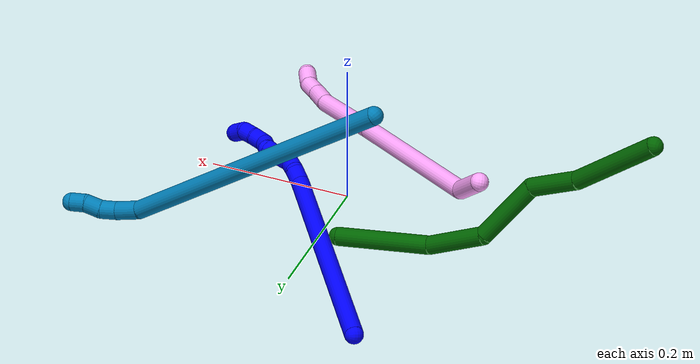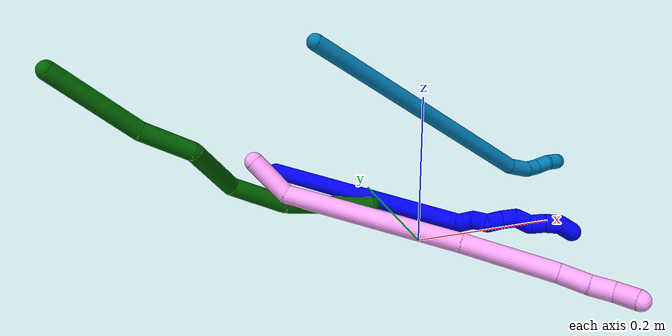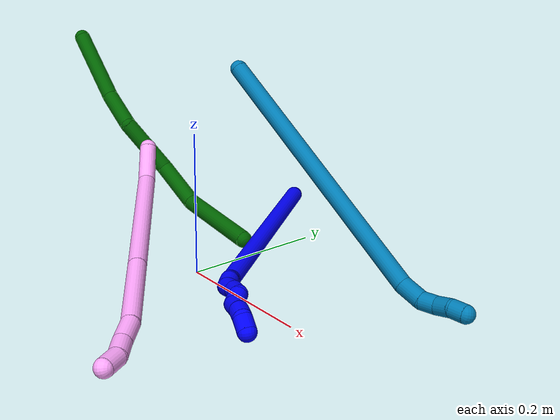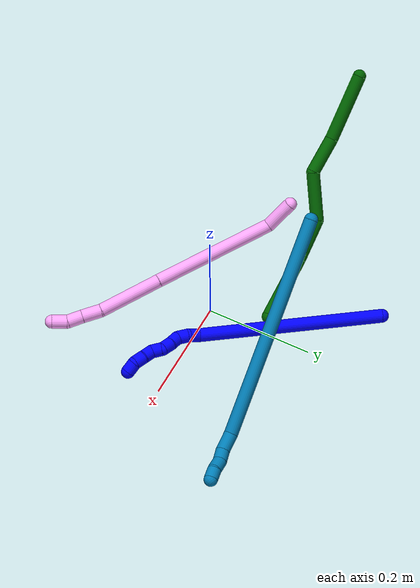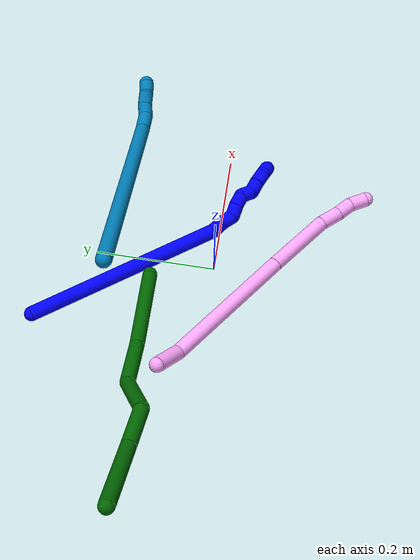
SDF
<sdf version="1.7">
 <world name="default">
  <model name="1">
   <static>0</static>
   <link name="1">
    <collision name="collision-cylinder-e_1_1_4">
     <pose>0.053994 -0.158262 0.025467 1.41125 0.324899 0.277464</pose>
     <geometry><cylinder><radius>0.0125</radius><length>0.338294</length></cylinder></geometry>
     <surface>
      <friction><ode><mu>1.16</mu><mu2>1.16</mu2><slip1>0</slip1><slip2>0</slip2></ode></friction>
      <contact><ode><kp>1e+06</kp><kd>1</kd><max_vel>0</max_vel><min_depth>0.001</min_depth></ode></contact>
     </surface>
    </collision>
    <visual name="visual-cylinder-e_1_1_4">
     <pose>0.053994 -0.158262 0.025467 1.41125 0.324899 0.277464</pose>
     <geometry><cylinder><radius>0.0125</radius><length>0.338294</length></cylinder></geometry>
     <material><ambient>0 0 1 1</ambient></material>
    </visual>
    <collision name="collision-cylinder-e_2_4_5">
     <pose>0.114764 -0.324826 0.049487 1.74329 0.677254 0.793318</pose>
     <geometry><cylinder><radius>0.0125</radius><length>0.021627</length></cylinder></geometry>
     <surface>
      <friction><ode><mu>1.16</mu><mu2>1.16</mu2><slip1>0</slip1><slip2>0</slip2></ode></friction>
      <contact><ode><kp>1e+06</kp><kd>1</kd><max_vel>0</max_vel><min_depth>0.001</min_depth></ode></contact>
     </surface>
    </collision>
    <visual name="visual-cylinder-e_2_4_5">
     <pose>0.114764 -0.324826 0.049487 1.74329 0.677254 0.793318</pose>
     <geometry><cylinder><radius>0.0125</radius><length>0.021627</length></cylinder></geometry>
     <material><ambient>0 0 1 1</ambient></material>
    </visual>
    <collision name="collision-cylinder-e_3_5_6">
     <pose>0.124332 -0.342738 0.048346 1.53905 0.282491 0.273775</pose>
     <geometry><cylinder><radius>0.0125</radius><length>0.020024</length></cylinder></geometry>
     <surface>
      <friction><ode><mu>1.16</mu><mu2>1.16</mu2><slip1>0</slip1><slip2>0</slip2></ode></friction>
      <contact><ode><kp>1e+06</kp><kd>1</kd><max_vel>0</max_vel><min_depth>0.001</min_depth></ode></contact>
     </surface>
    </collision>
    <visual name="visual-cylinder-e_3_5_6">
     <pose>0.124332 -0.342738 0.048346 1.53905 0.282491 0.273775</pose>
     <geometry><cylinder><radius>0.0125</radius><length>0.020024</length></cylinder></geometry>
     <material><ambient>0 0 1 1</ambient></material>
    </visual>
    <collision name="collision-cylinder-e_4_6_7">
     <pose>0.129993 -0.359819 0.042619 2.25004 0.290521 0.594157</pose>
     <geometry><cylinder><radius>0.0125</radius><length>0.020043</length></cylinder></geometry>
     <surface>
      <friction><ode><mu>1.16</mu><mu2>1.16</mu2><slip1>0</slip1><slip2>0</slip2></ode></friction>
      <contact><ode><kp>1e+06</kp><kd>1</kd><max_vel>0</max_vel><min_depth>0.001</min_depth></ode></contact>
     </surface>
    </collision>
    <visual name="visual-cylinder-e_4_6_7">
     <pose>0.129993 -0.359819 0.042619 2.25004 0.290521 0.594157</pose>
     <geometry><cylinder><radius>0.0125</radius><length>0.020043</length></cylinder></geometry>
     <material><ambient>0 0 1 1</ambient></material>
    </visual>
    <collision name="collision-cylinder-e_5_7_8">
     <pose>0.135843 -0.375632 0.031942 2.07893 0.302422 0.507367</pose>
     <geometry><cylinder><radius>0.0125</radius><length>0.020005</length></cylinder></geometry>
     <surface>
      <friction><ode><mu>1.16</mu><mu2>1.16</mu2><slip1>0</slip1><slip2>0</slip2></ode></friction>
      <contact><ode><kp>1e+06</kp><kd>1</kd><max_vel>0</max_vel><min_depth>0.001</min_depth></ode></contact>
     </surface>
    </collision>
    <visual name="visual-cylinder-e_5_7_8">
     <pose>0.135843 -0.375632 0.031942 2.07893 0.302422 0.507367</pose>
     <geometry><cylinder><radius>0.0125</radius><length>0.020005</length></cylinder></geometry>
     <material><ambient>0 0 1 1</ambient></material>
    </visual>
    <collision name="collision-cylinder-e_6_8_9">
     <pose>0.139943 -0.393727 0.029206 1.3774 0.112271 0.092448</pose>
     <geometry><cylinder><radius>0.0125</radius><length>0.020001</length></cylinder></geometry>
     <surface>
      <friction><ode><mu>1.16</mu><mu2>1.16</mu2><slip1>0</slip1><slip2>0</slip2></ode></friction>
      <contact><ode><kp>1e+06</kp><kd>1</kd><max_vel>0</max_vel><min_depth>0.001</min_depth></ode></contact>
     </surface>
    </collision>
    <visual name="visual-cylinder-e_6_8_9">
     <pose>0.139943 -0.393727 0.029206 1.3774 0.112271 0.092448</pose>
     <geometry><cylinder><radius>0.0125</radius><length>0.020001</length></cylinder></geometry>
     <material><ambient>0 0 1 1</ambient></material>
    </visual>
    <collision name="collision-cylinder-e_7_9_10">
     <pose>0.14367 -0.411992 0.02656 2.06218 0.26374 0.435818</pose>
     <geometry><cylinder><radius>0.0125</radius><length>0.020002</length></cylinder></geometry>
     <surface>
      <friction><ode><mu>1.16</mu><mu2>1.16</mu2><slip1>0</slip1><slip2>0</slip2></ode></friction>
      <contact><ode><kp>1e+06</kp><kd>1</kd><max_vel>0</max_vel><min_depth>0.001</min_depth></ode></contact>
     </surface>
    </collision>
    <visual name="visual-cylinder-e_7_9_10">
     <pose>0.14367 -0.411992 0.02656 2.06218 0.26374 0.435818</pose>
     <geometry><cylinder><radius>0.0125</radius><length>0.020002</length></cylinder></geometry>
     <material><ambient>0 0 1 1</ambient></material>
    </visual>
    <collision name="collision-cylinder-e_8_10_11">
     <pose>0.147796 -0.429738 0.018476 1.93569 0.152457 0.220967</pose>
     <geometry><cylinder><radius>0.0125</radius><length>0.020002</length></cylinder></geometry>
     <surface>
      <friction><ode><mu>1.16</mu><mu2>1.16</mu2><slip1>0</slip1><slip2>0</slip2></ode></friction>
      <contact><ode><kp>1e+06</kp><kd>1</kd><max_vel>0</max_vel><min_depth>0.001</min_depth></ode></contact>
     </surface>
    </collision>
    <visual name="visual-cylinder-e_8_10_11">
     <pose>0.147796 -0.429738 0.018476 1.93569 0.152457 0.220967</pose>
     <geometry><cylinder><radius>0.0125</radius><length>0.020002</length></cylinder></geometry>
     <material><ambient>0 0 1 1</ambient></material>
    </visual>
    <collision name="collision-cylinder-e_9_11_2">
     <pose>0.145637 -0.447881 0.012282 1.86168 -0.376614 -0.501183</pose>
     <geometry><cylinder><radius>0.0125</radius><length>0.020001</length></cylinder></geometry>
     <surface>
      <friction><ode><mu>1.16</mu><mu2>1.16</mu2><slip1>0</slip1><slip2>0</slip2></ode></friction>
      <contact><ode><kp>1e+06</kp><kd>1</kd><max_vel>0</max_vel><min_depth>0.001</min_depth></ode></contact>
     </surface>
    </collision>
    <visual name="visual-cylinder-e_9_11_2">
     <pose>0.145637 -0.447881 0.012282 1.86168 -0.376614 -0.501183</pose>
     <geometry><cylinder><radius>0.0125</radius><length>0.020001</length></cylinder></geometry>
     <material><ambient>0 0 1 1</ambient></material>
    </visual>
    <collision name="collision-sphere-2">
     <pose>0.141959 -0.45679 0.009615 0 -0 0</pose>
     <geometry><sphere><radius>0.0125</radius></sphere></geometry>
     <surface>
      <friction><ode><mu>1.16</mu><mu2>1.16</mu2><slip1>0</slip1><slip2>0</slip2></ode></friction>
      <contact><ode><kp>1e+06</kp><kd>1</kd><max_vel>0</max_vel><min_depth>0.001</min_depth></ode></contact>
     </surface>
    </collision>
    <visual name="visual-sphere-2">
     <pose>0.141959 -0.45679 0.009615 0 -0 0</pose>
     <geometry><sphere><radius>0.0125</radius></sphere></geometry>
     <material><ambient>0 0 1 1</ambient></material>
    </visual>
    <collision name="collision-sphere-11">
     <pose>0.149315 -0.438973 0.014949 0 -0 0</pose>
     <geometry><sphere><radius>0.0125</radius></sphere></geometry>
     <surface>
      <friction><ode><mu>1.16</mu><mu2>1.16</mu2><slip1>0</slip1><slip2>0</slip2></ode></friction>
      <contact><ode><kp>1e+06</kp><kd>1</kd><max_vel>0</max_vel><min_depth>0.001</min_depth></ode></contact>
     </surface>
    </collision>
    <visual name="visual-sphere-11">
     <pose>0.149315 -0.438973 0.014949 0 -0 0</pose>
     <geometry><sphere><radius>0.0125</radius></sphere></geometry>
     <material><ambient>0 0 1 1</ambient></material>
    </visual>
    <collision name="collision-sphere-10">
     <pose>0.146277 -0.420504 0.022004 0 -0 0</pose>
     <geometry><sphere><radius>0.0125</radius></sphere></geometry>
     <surface>
      <friction><ode><mu>1.16</mu><mu2>1.16</mu2><slip1>0</slip1><slip2>0</slip2></ode></friction>
      <contact><ode><kp>1e+06</kp><kd>1</kd><max_vel>0</max_vel><min_depth>0.001</min_depth></ode></contact>
     </surface>
    </collision>
    <visual name="visual-sphere-10">
     <pose>0.146277 -0.420504 0.022004 0 -0 0</pose>
     <geometry><sphere><radius>0.0125</radius></sphere></geometry>
     <material><ambient>0 0 1 1</ambient></material>
    </visual>
    <collision name="collision-sphere-9">
     <pose>0.141063 -0.403479 0.031115 0 -0 0</pose>
     <geometry><sphere><radius>0.0125</radius></sphere></geometry>
     <surface>
      <friction><ode><mu>1.16</mu><mu2>1.16</mu2><slip1>0</slip1><slip2>0</slip2></ode></friction>
      <contact><ode><kp>1e+06</kp><kd>1</kd><max_vel>0</max_vel><min_depth>0.001</min_depth></ode></contact>
     </surface>
    </collision>
    <visual name="visual-sphere-9">
     <pose>0.141063 -0.403479 0.031115 0 -0 0</pose>
     <geometry><sphere><radius>0.0125</radius></sphere></geometry>
     <material><ambient>0 0 1 1</ambient></material>
    </visual>
    <collision name="collision-sphere-4">
     <pose>0.107988 -0.316524 0.050934 0 -0 0</pose>
     <geometry><sphere><radius>0.0125</radius></sphere></geometry>
     <surface>
      <friction><ode><mu>1.16</mu><mu2>1.16</mu2><slip1>0</slip1><slip2>0</slip2></ode></friction>
      <contact><ode><kp>1e+06</kp><kd>1</kd><max_vel>0</max_vel><min_depth>0.001</min_depth></ode></contact>
     </surface>
    </collision>
    <visual name="visual-sphere-4">
     <pose>0.107988 -0.316524 0.050934 0 -0 0</pose>
     <geometry><sphere><radius>0.0125</radius></sphere></geometry>
     <material><ambient>0 0 1 1</ambient></material>
    </visual>
    <collision name="collision-sphere-1">
     <geometry><sphere><radius>0.0125</radius></sphere></geometry>
     <surface>
      <friction><ode><mu>1.16</mu><mu2>1.16</mu2><slip1>0</slip1><slip2>0</slip2></ode></friction>
      <contact><ode><kp>1e+06</kp><kd>1</kd><max_vel>0</max_vel><min_depth>0.001</min_depth></ode></contact>
     </surface>
    </collision>
    <visual name="visual-sphere-1">
     <geometry><sphere><radius>0.0125</radius></sphere></geometry>
     <material><ambient>0 0 1 1</ambient></material>
    </visual>
    <collision name="collision-sphere-8">
     <pose>0.138822 -0.383975 0.027296 0 -0 0</pose>
     <geometry><sphere><radius>0.0125</radius></sphere></geometry>
     <surface>
      <friction><ode><mu>1.16</mu><mu2>1.16</mu2><slip1>0</slip1><slip2>0</slip2></ode></friction>
      <contact><ode><kp>1e+06</kp><kd>1</kd><max_vel>0</max_vel><min_depth>0.001</min_depth></ode></contact>
     </surface>
    </collision>
    <visual name="visual-sphere-8">
     <pose>0.138822 -0.383975 0.027296 0 -0 0</pose>
     <geometry><sphere><radius>0.0125</radius></sphere></geometry>
     <material><ambient>0 0 1 1</ambient></material>
    </visual>
    <collision name="collision-sphere-5">
     <pose>0.121541 -0.333128 0.048041 0 -0 0</pose>
     <geometry><sphere><radius>0.0125</radius></sphere></geometry>
     <surface>
      <friction><ode><mu>1.16</mu><mu2>1.16</mu2><slip1>0</slip1><slip2>0</slip2></ode></friction>
      <contact><ode><kp>1e+06</kp><kd>1</kd><max_vel>0</max_vel><min_depth>0.001</min_depth></ode></contact>
     </surface>
    </collision>
    <visual name="visual-sphere-5">
     <pose>0.121541 -0.333128 0.048041 0 -0 0</pose>
     <geometry><sphere><radius>0.0125</radius></sphere></geometry>
     <material><ambient>0 0 1 1</ambient></material>
    </visual>
    <collision name="collision-sphere-6">
     <pose>0.127123 -0.352349 0.048651 0 -0 0</pose>
     <geometry><sphere><radius>0.0125</radius></sphere></geometry>
     <surface>
      <friction><ode><mu>1.16</mu><mu2>1.16</mu2><slip1>0</slip1><slip2>0</slip2></ode></friction>
      <contact><ode><kp>1e+06</kp><kd>1</kd><max_vel>0</max_vel><min_depth>0.001</min_depth></ode></contact>
     </surface>
    </collision>
    <visual name="visual-sphere-6">
     <pose>0.127123 -0.352349 0.048651 0 -0 0</pose>
     <geometry><sphere><radius>0.0125</radius></sphere></geometry>
     <material><ambient>0 0 1 1</ambient></material>
    </visual>
    <collision name="collision-sphere-7">
     <pose>0.132864 -0.36729 0.036588 0 -0 0</pose>
     <geometry><sphere><radius>0.0125</radius></sphere></geometry>
     <surface>
      <friction><ode><mu>1.16</mu><mu2>1.16</mu2><slip1>0</slip1><slip2>0</slip2></ode></friction>
      <contact><ode><kp>1e+06</kp><kd>1</kd><max_vel>0</max_vel><min_depth>0.001</min_depth></ode></contact>
     </surface>
    </collision>
    <visual name="visual-sphere-7">
     <pose>0.132864 -0.36729 0.036588 0 -0 0</pose>
     <geometry><sphere><radius>0.0125</radius></sphere></geometry>
     <material><ambient>0 0 1 1</ambient></material>
    </visual>
    <inertial>
     <pose>0.080205 -0.231646 0.027755 0 -0 0</pose>
     <mass>0.5</mass>
     <inertia>
      <ixx>0.003818</ixx>
      <ixy>0</ixy>
      <ixz>0</ixz>
      <iyy>0.001582</iyy>
      <iyz>0</iyz>
      <izz>0.002005</izz>
     </inertia>
    </inertial>
   </link>
   <pose>-0.128433 0.287725 0.011497 2.21773 -1.20721 -1.42132</pose>
  </model>
  <model name="4">
   <static>0</static>
   <link name="4">
    <collision name="collision-cylinder-e_1_1_4">
     <pose>0.0289 -0.000108 0.004484 0.024081 1.41681 0.020631</pose>
     <geometry><cylinder><radius>0.0125</radius><length>0.058491</length></cylinder></geometry>
     <surface>
      <friction><ode><mu>1.16</mu><mu2>1.16</mu2><slip1>0</slip1><slip2>0</slip2></ode></friction>
      <contact><ode><kp>1e+06</kp><kd>1</kd><max_vel>0</max_vel><min_depth>0.001</min_depth></ode></contact>
     </surface>
    </collision>
    <visual name="visual-cylinder-e_1_1_4">
     <pose>0.0289 -0.000108 0.004484 0.024081 1.41681 0.020631</pose>
     <geometry><cylinder><radius>0.0125</radius><length>0.058491</length></cylinder></geometry>
     <material><ambient>1 0.65098 0.996078 1</ambient></material>
    </visual>
    <collision name="collision-cylinder-e_2_4_5">
     <pose>0.147482 -0.053424 0.056646 0.840161 0.898115 0.424024</pose>
     <geometry><cylinder><radius>0.0125</radius><length>0.229322</length></cylinder></geometry>
     <surface>
      <friction><ode><mu>1.16</mu><mu2>1.16</mu2><slip1>0</slip1><slip2>0</slip2></ode></friction>
      <contact><ode><kp>1e+06</kp><kd>1</kd><max_vel>0</max_vel><min_depth>0.001</min_depth></ode></contact>
     </surface>
    </collision>
    <visual name="visual-cylinder-e_2_4_5">
     <pose>0.147482 -0.053424 0.056646 0.840161 0.898115 0.424024</pose>
     <geometry><cylinder><radius>0.0125</radius><length>0.229322</length></cylinder></geometry>
     <material><ambient>1 0.65098 0.996078 1</ambient></material>
    </visual>
    <collision name="collision-cylinder-e_3_5_6">
     <pose>0.284481 -0.132956 0.127988 0.838559 0.928519 0.439192</pose>
     <geometry><cylinder><radius>0.0125</radius><length>0.118184</length></cylinder></geometry>
     <surface>
      <friction><ode><mu>1.16</mu><mu2>1.16</mu2><slip1>0</slip1><slip2>0</slip2></ode></friction>
      <contact><ode><kp>1e+06</kp><kd>1</kd><max_vel>0</max_vel><min_depth>0.001</min_depth></ode></contact>
     </surface>
    </collision>
    <visual name="visual-cylinder-e_3_5_6">
     <pose>0.284481 -0.132956 0.127988 0.838559 0.928519 0.439192</pose>
     <geometry><cylinder><radius>0.0125</radius><length>0.118184</length></cylinder></geometry>
     <material><ambient>1 0.65098 0.996078 1</ambient></material>
    </visual>
    <collision name="collision-cylinder-e_4_6_7">
     <pose>0.346358 -0.169391 0.155986 1.1659 0.923772 0.634331</pose>
     <geometry><cylinder><radius>0.0125</radius><length>0.036498</length></cylinder></geometry>
     <surface>
      <friction><ode><mu>1.16</mu><mu2>1.16</mu2><slip1>0</slip1><slip2>0</slip2></ode></friction>
      <contact><ode><kp>1e+06</kp><kd>1</kd><max_vel>0</max_vel><min_depth>0.001</min_depth></ode></contact>
     </surface>
    </collision>
    <visual name="visual-cylinder-e_4_6_7">
     <pose>0.346358 -0.169391 0.155986 1.1659 0.923772 0.634331</pose>
     <geometry><cylinder><radius>0.0125</radius><length>0.036498</length></cylinder></geometry>
     <material><ambient>1 0.65098 0.996078 1</ambient></material>
    </visual>
    <collision name="collision-cylinder-e_5_7_8">
     <pose>0.371775 -0.187572 0.165174 1.02915 0.856239 0.505006</pose>
     <geometry><cylinder><radius>0.0125</radius><length>0.028743</length></cylinder></geometry>
     <surface>
      <friction><ode><mu>1.16</mu><mu2>1.16</mu2><slip1>0</slip1><slip2>0</slip2></ode></friction>
      <contact><ode><kp>1e+06</kp><kd>1</kd><max_vel>0</max_vel><min_depth>0.001</min_depth></ode></contact>
     </surface>
    </collision>
    <visual name="visual-cylinder-e_5_7_8">
     <pose>0.371775 -0.187572 0.165174 1.02915 0.856239 0.505006</pose>
     <geometry><cylinder><radius>0.0125</radius><length>0.028743</length></cylinder></geometry>
     <material><ambient>1 0.65098 0.996078 1</ambient></material>
    </visual>
    <collision name="collision-cylinder-e_6_8_2">
     <pose>0.392064 -0.206472 0.170756 1.50381 0.715387 0.672522</pose>
     <geometry><cylinder><radius>0.0125</radius><length>0.028762</length></cylinder></geometry>
     <surface>
      <friction><ode><mu>1.16</mu><mu2>1.16</mu2><slip1>0</slip1><slip2>0</slip2></ode></friction>
      <contact><ode><kp>1e+06</kp><kd>1</kd><max_vel>0</max_vel><min_depth>0.001</min_depth></ode></contact>
     </surface>
    </collision>
    <visual name="visual-cylinder-e_6_8_2">
     <pose>0.392064 -0.206472 0.170756 1.50381 0.715387 0.672522</pose>
     <geometry><cylinder><radius>0.0125</radius><length>0.028762</length></cylinder></geometry>
     <material><ambient>1 0.65098 0.996078 1</ambient></material>
    </visual>
    <collision name="collision-sphere-2">
     <pose>0.401496 -0.217303 0.171483 0 -0 0</pose>
     <geometry><sphere><radius>0.0125</radius></sphere></geometry>
     <surface>
      <friction><ode><mu>1.16</mu><mu2>1.16</mu2><slip1>0</slip1><slip2>0</slip2></ode></friction>
      <contact><ode><kp>1e+06</kp><kd>1</kd><max_vel>0</max_vel><min_depth>0.001</min_depth></ode></contact>
     </surface>
    </collision>
    <visual name="visual-sphere-2">
     <pose>0.401496 -0.217303 0.171483 0 -0 0</pose>
     <geometry><sphere><radius>0.0125</radius></sphere></geometry>
     <material><ambient>1 0.65098 0.996078 1</ambient></material>
    </visual>
    <collision name="collision-sphere-4">
     <pose>0.057799 -0.000216 0.008969 0 -0 0</pose>
     <geometry><sphere><radius>0.0125</radius></sphere></geometry>
     <surface>
      <friction><ode><mu>1.16</mu><mu2>1.16</mu2><slip1>0</slip1><slip2>0</slip2></ode></friction>
      <contact><ode><kp>1e+06</kp><kd>1</kd><max_vel>0</max_vel><min_depth>0.001</min_depth></ode></contact>
     </surface>
    </collision>
    <visual name="visual-sphere-4">
     <pose>0.057799 -0.000216 0.008969 0 -0 0</pose>
     <geometry><sphere><radius>0.0125</radius></sphere></geometry>
     <material><ambient>1 0.65098 0.996078 1</ambient></material>
    </visual>
    <collision name="collision-sphere-1">
     <geometry><sphere><radius>0.0125</radius></sphere></geometry>
     <surface>
      <friction><ode><mu>1.16</mu><mu2>1.16</mu2><slip1>0</slip1><slip2>0</slip2></ode></friction>
      <contact><ode><kp>1e+06</kp><kd>1</kd><max_vel>0</max_vel><min_depth>0.001</min_depth></ode></contact>
     </surface>
    </collision>
    <visual name="visual-sphere-1">
     <geometry><sphere><radius>0.0125</radius></sphere></geometry>
     <material><ambient>1 0.65098 0.996078 1</ambient></material>
    </visual>
    <collision name="collision-sphere-8">
     <pose>0.382631 -0.195641 0.17003 0 -0 0</pose>
     <geometry><sphere><radius>0.0125</radius></sphere></geometry>
     <surface>
      <friction><ode><mu>1.16</mu><mu2>1.16</mu2><slip1>0</slip1><slip2>0</slip2></ode></friction>
      <contact><ode><kp>1e+06</kp><kd>1</kd><max_vel>0</max_vel><min_depth>0.001</min_depth></ode></contact>
     </surface>
    </collision>
    <visual name="visual-sphere-8">
     <pose>0.382631 -0.195641 0.17003 0 -0 0</pose>
     <geometry><sphere><radius>0.0125</radius></sphere></geometry>
     <material><ambient>1 0.65098 0.996078 1</ambient></material>
    </visual>
    <collision name="collision-sphere-5">
     <pose>0.237164 -0.106631 0.104324 0 -0 0</pose>
     <geometry><sphere><radius>0.0125</radius></sphere></geometry>
     <surface>
      <friction><ode><mu>1.16</mu><mu2>1.16</mu2><slip1>0</slip1><slip2>0</slip2></ode></friction>
      <contact><ode><kp>1e+06</kp><kd>1</kd><max_vel>0</max_vel><min_depth>0.001</min_depth></ode></contact>
     </surface>
    </collision>
    <visual name="visual-sphere-5">
     <pose>0.237164 -0.106631 0.104324 0 -0 0</pose>
     <geometry><sphere><radius>0.0125</radius></sphere></geometry>
     <material><ambient>1 0.65098 0.996078 1</ambient></material>
    </visual>
    <collision name="collision-sphere-6">
     <pose>0.331798 -0.15928 0.151652 0 -0 0</pose>
     <geometry><sphere><radius>0.0125</radius></sphere></geometry>
     <surface>
      <friction><ode><mu>1.16</mu><mu2>1.16</mu2><slip1>0</slip1><slip2>0</slip2></ode></friction>
      <contact><ode><kp>1e+06</kp><kd>1</kd><max_vel>0</max_vel><min_depth>0.001</min_depth></ode></contact>
     </surface>
    </collision>
    <visual name="visual-sphere-6">
     <pose>0.331798 -0.15928 0.151652 0 -0 0</pose>
     <geometry><sphere><radius>0.0125</radius></sphere></geometry>
     <material><ambient>1 0.65098 0.996078 1</ambient></material>
    </visual>
    <collision name="collision-sphere-7">
     <pose>0.360919 -0.179502 0.160319 0 -0 0</pose>
     <geometry><sphere><radius>0.0125</radius></sphere></geometry>
     <surface>
      <friction><ode><mu>1.16</mu><mu2>1.16</mu2><slip1>0</slip1><slip2>0</slip2></ode></friction>
      <contact><ode><kp>1e+06</kp><kd>1</kd><max_vel>0</max_vel><min_depth>0.001</min_depth></ode></contact>
     </surface>
    </collision>
    <visual name="visual-sphere-7">
     <pose>0.360919 -0.179502 0.160319 0 -0 0</pose>
     <geometry><sphere><radius>0.0125</radius></sphere></geometry>
     <material><ambient>1 0.65098 0.996078 1</ambient></material>
    </visual>
    <inertial>
     <pose>0.207472 -0.090966 0.087461 0 -0 0</pose>
     <mass>0.5</mass>
     <inertia>
      <ixx>0.000994</ixx>
      <ixy>0</ixy>
      <ixz>0</ixz>
      <iyy>0.001292</iyy>
      <iyz>0</iyz>
      <izz>-0.00038</izz>
     </inertia>
    </inertial>
   </link>
   <pose>-0.207887 0.057586 0.117597 -1.18535 0.803315 -0.841209</pose>
  </model>
  <model name="6">
   <static>0</static>
   <link name="6">
    <collision name="collision-cylinder-e_1_1_4">
     <pose>-0.011382 0.008931 0.063381 -0.139993 -0.175977 0.01237</pose>
     <geometry><cylinder><radius>0.0125</radius><length>0.130022</length></cylinder></geometry>
     <surface>
      <friction><ode><mu>1.16</mu><mu2>1.16</mu2><slip1>0</slip1><slip2>0</slip2></ode></friction>
      <contact><ode><kp>1e+06</kp><kd>1</kd><max_vel>0</max_vel><min_depth>0.001</min_depth></ode></contact>
     </surface>
    </collision>
    <visual name="visual-cylinder-e_1_1_4">
     <pose>-0.011382 0.008931 0.063381 -0.139993 -0.175977 0.01237</pose>
     <geometry><cylinder><radius>0.0125</radius><length>0.130022</length></cylinder></geometry>
     <material><ambient>0 0.392157 0.003922 1</ambient></material>
    </visual>
    <collision name="collision-cylinder-e_2_4_5">
     <pose>-0.034112 0.011921 0.165668 0.151547 -0.280728 -0.021453</pose>
     <geometry><cylinder><radius>0.0125</radius><length>0.081923</length></cylinder></geometry>
     <surface>
      <friction><ode><mu>1.16</mu><mu2>1.16</mu2><slip1>0</slip1><slip2>0</slip2></ode></friction>
      <contact><ode><kp>1e+06</kp><kd>1</kd><max_vel>0</max_vel><min_depth>0.001</min_depth></ode></contact>
     </surface>
    </collision>
    <visual name="visual-cylinder-e_2_4_5">
     <pose>-0.034112 0.011921 0.165668 0.151547 -0.280728 -0.021453</pose>
     <geometry><cylinder><radius>0.0125</radius><length>0.081923</length></cylinder></geometry>
     <material><ambient>0 0.392157 0.003922 1</ambient></material>
    </visual>
    <collision name="collision-cylinder-e_3_5_6">
     <pose>-0.078479 -0.009034 0.231923 0.502043 -0.813764 -0.220114</pose>
     <geometry><cylinder><radius>0.0125</radius><length>0.090852</length></cylinder></geometry>
     <surface>
      <friction><ode><mu>1.16</mu><mu2>1.16</mu2><slip1>0</slip1><slip2>0</slip2></ode></friction>
      <contact><ode><kp>1e+06</kp><kd>1</kd><max_vel>0</max_vel><min_depth>0.001</min_depth></ode></contact>
     </surface>
    </collision>
    <visual name="visual-cylinder-e_3_5_6">
     <pose>-0.078479 -0.009034 0.231923 0.502043 -0.813764 -0.220114</pose>
     <geometry><cylinder><radius>0.0125</radius><length>0.090852</length></cylinder></geometry>
     <material><ambient>0 0.392157 0.003922 1</ambient></material>
    </visual>
    <collision name="collision-cylinder-e_4_6_7">
     <pose>-0.118682 -0.030819 0.292989 0.198209 -0.205903 -0.020545</pose>
     <geometry><cylinder><radius>0.0125</radius><length>0.07027</length></cylinder></geometry>
     <surface>
      <friction><ode><mu>1.16</mu><mu2>1.16</mu2><slip1>0</slip1><slip2>0</slip2></ode></friction>
      <contact><ode><kp>1e+06</kp><kd>1</kd><max_vel>0</max_vel><min_depth>0.001</min_depth></ode></contact>
     </surface>
    </collision>
    <visual name="visual-cylinder-e_4_6_7">
     <pose>-0.118682 -0.030819 0.292989 0.198209 -0.205903 -0.020545</pose>
     <geometry><cylinder><radius>0.0125</radius><length>0.07027</length></cylinder></geometry>
     <material><ambient>0 0.392157 0.003922 1</ambient></material>
    </visual>
    <collision name="collision-cylinder-e_5_7_2">
     <pose>-0.145573 -0.061412 0.382136 0.40591 -0.315742 -0.065498</pose>
     <geometry><cylinder><radius>0.0125</radius><length>0.126933</length></cylinder></geometry>
     <surface>
      <friction><ode><mu>1.16</mu><mu2>1.16</mu2><slip1>0</slip1><slip2>0</slip2></ode></friction>
      <contact><ode><kp>1e+06</kp><kd>1</kd><max_vel>0</max_vel><min_depth>0.001</min_depth></ode></contact>
     </surface>
    </collision>
    <visual name="visual-cylinder-e_5_7_2">
     <pose>-0.145573 -0.061412 0.382136 0.40591 -0.315742 -0.065498</pose>
     <geometry><cylinder><radius>0.0125</radius><length>0.126933</length></cylinder></geometry>
     <material><ambient>0 0.392157 0.003922 1</ambient></material>
    </visual>
    <collision name="collision-sphere-2">
     <pose>-0.165281 -0.085234 0.437563 0 -0 0</pose>
     <geometry><sphere><radius>0.0125</radius></sphere></geometry>
     <surface>
      <friction><ode><mu>1.16</mu><mu2>1.16</mu2><slip1>0</slip1><slip2>0</slip2></ode></friction>
      <contact><ode><kp>1e+06</kp><kd>1</kd><max_vel>0</max_vel><min_depth>0.001</min_depth></ode></contact>
     </surface>
    </collision>
    <visual name="visual-sphere-2">
     <pose>-0.165281 -0.085234 0.437563 0 -0 0</pose>
     <geometry><sphere><radius>0.0125</radius></sphere></geometry>
     <material><ambient>0 0.392157 0.003922 1</ambient></material>
    </visual>
    <collision name="collision-sphere-7">
     <pose>-0.125865 -0.037591 0.326709 0 -0 0</pose>
     <geometry><sphere><radius>0.0125</radius></sphere></geometry>
     <surface>
      <friction><ode><mu>1.16</mu><mu2>1.16</mu2><slip1>0</slip1><slip2>0</slip2></ode></friction>
      <contact><ode><kp>1e+06</kp><kd>1</kd><max_vel>0</max_vel><min_depth>0.001</min_depth></ode></contact>
     </surface>
    </collision>
    <visual name="visual-sphere-7">
     <pose>-0.125865 -0.037591 0.326709 0 -0 0</pose>
     <geometry><sphere><radius>0.0125</radius></sphere></geometry>
     <material><ambient>0 0.392157 0.003922 1</ambient></material>
    </visual>
    <collision name="collision-sphere-6">
     <pose>-0.111498 -0.024046 0.25927 0 -0 0</pose>
     <geometry><sphere><radius>0.0125</radius></sphere></geometry>
     <surface>
      <friction><ode><mu>1.16</mu><mu2>1.16</mu2><slip1>0</slip1><slip2>0</slip2></ode></friction>
      <contact><ode><kp>1e+06</kp><kd>1</kd><max_vel>0</max_vel><min_depth>0.001</min_depth></ode></contact>
     </surface>
    </collision>
    <visual name="visual-sphere-6">
     <pose>-0.111498 -0.024046 0.25927 0 -0 0</pose>
     <geometry><sphere><radius>0.0125</radius></sphere></geometry>
     <material><ambient>0 0.392157 0.003922 1</ambient></material>
    </visual>
    <collision name="collision-sphere-5">
     <pose>-0.04546 0.005979 0.204575 0 -0 0</pose>
     <geometry><sphere><radius>0.0125</radius></sphere></geometry>
     <surface>
      <friction><ode><mu>1.16</mu><mu2>1.16</mu2><slip1>0</slip1><slip2>0</slip2></ode></friction>
      <contact><ode><kp>1e+06</kp><kd>1</kd><max_vel>0</max_vel><min_depth>0.001</min_depth></ode></contact>
     </surface>
    </collision>
    <visual name="visual-sphere-5">
     <pose>-0.04546 0.005979 0.204575 0 -0 0</pose>
     <geometry><sphere><radius>0.0125</radius></sphere></geometry>
     <material><ambient>0 0.392157 0.003922 1</ambient></material>
    </visual>
    <collision name="collision-sphere-1">
     <geometry><sphere><radius>0.0125</radius></sphere></geometry>
     <surface>
      <friction><ode><mu>1.16</mu><mu2>1.16</mu2><slip1>0</slip1><slip2>0</slip2></ode></friction>
      <contact><ode><kp>1e+06</kp><kd>1</kd><max_vel>0</max_vel><min_depth>0.001</min_depth></ode></contact>
     </surface>
    </collision>
    <visual name="visual-sphere-1">
     <geometry><sphere><radius>0.0125</radius></sphere></geometry>
     <material><ambient>0 0.392157 0.003922 1</ambient></material>
    </visual>
    <collision name="collision-sphere-4">
     <pose>-0.022763 0.017863 0.126762 0 -0 0</pose>
     <geometry><sphere><radius>0.0125</radius></sphere></geometry>
     <surface>
      <friction><ode><mu>1.16</mu><mu2>1.16</mu2><slip1>0</slip1><slip2>0</slip2></ode></friction>
      <contact><ode><kp>1e+06</kp><kd>1</kd><max_vel>0</max_vel><min_depth>0.001</min_depth></ode></contact>
     </surface>
    </collision>
    <visual name="visual-sphere-4">
     <pose>-0.022763 0.017863 0.126762 0 -0 0</pose>
     <geometry><sphere><radius>0.0125</radius></sphere></geometry>
     <material><ambient>0 0.392157 0.003922 1</ambient></material>
    </visual>
    <inertial>
     <pose>-0.076444 -0.017288 0.223955 0 -0 0</pose>
     <mass>0.5</mass>
     <inertia>
      <ixx>0.000441</ixx>
      <ixy>0</ixy>
      <ixz>0</ixz>
      <iyy>0.000463</iyy>
      <iyz>0</iyz>
      <izz>0.000265</izz>
     </inertia>
    </inertial>
   </link>
   <pose>-0.029882 0.104615 0.012488 -1.34134 0.464957 1.46865</pose>
  </model>
  <model name="9">
   <static>0</static>
   <link name="9">
    <collision name="collision-cylinder-e_1_1_4">
     <pose>0.11398 0.130715 0.100604 -0.914843 0.604666 -0.304676</pose>
     <geometry><cylinder><radius>0.0125</radius><length>0.400993</length></cylinder></geometry>
     <surface>
      <friction><ode><mu>1.16</mu><mu2>1.16</mu2><slip1>0</slip1><slip2>0</slip2></ode></friction>
      <contact><ode><kp>1e+06</kp><kd>1</kd><max_vel>0</max_vel><min_depth>0.001</min_depth></ode></contact>
     </surface>
    </collision>
    <visual name="visual-cylinder-e_1_1_4">
     <pose>0.11398 0.130715 0.100604 -0.914843 0.604666 -0.304676</pose>
     <geometry><cylinder><radius>0.0125</radius><length>0.400993</length></cylinder></geometry>
     <material><ambient>0 0.490196 0.709804 1</ambient></material>
    </visual>
    <collision name="collision-cylinder-e_2_4_5">
     <pose>0.241169 0.268759 0.209123 -0.746917 0.88601 -0.367632</pose>
     <geometry><cylinder><radius>0.0125</radius><length>0.03411</length></cylinder></geometry>
     <surface>
      <friction><ode><mu>1.16</mu><mu2>1.16</mu2><slip1>0</slip1><slip2>0</slip2></ode></friction>
      <contact><ode><kp>1e+06</kp><kd>1</kd><max_vel>0</max_vel><min_depth>0.001</min_depth></ode></contact>
     </surface>
    </collision>
    <visual name="visual-cylinder-e_2_4_5">
     <pose>0.241169 0.268759 0.209123 -0.746917 0.88601 -0.367632</pose>
     <geometry><cylinder><radius>0.0125</radius><length>0.03411</length></cylinder></geometry>
     <material><ambient>0 0.490196 0.709804 1</ambient></material>
    </visual>
    <collision name="collision-cylinder-e_3_5_6">
     <pose>0.263191 0.277099 0.223694 -0.150876 0.918403 -0.074709</pose>
     <geometry><cylinder><radius>0.0125</radius><length>0.022179</length></cylinder></geometry>
     <surface>
      <friction><ode><mu>1.16</mu><mu2>1.16</mu2><slip1>0</slip1><slip2>0</slip2></ode></friction>
      <contact><ode><kp>1e+06</kp><kd>1</kd><max_vel>0</max_vel><min_depth>0.001</min_depth></ode></contact>
     </surface>
    </collision>
    <visual name="visual-cylinder-e_3_5_6">
     <pose>0.263191 0.277099 0.223694 -0.150876 0.918403 -0.074709</pose>
     <geometry><cylinder><radius>0.0125</radius><length>0.022179</length></cylinder></geometry>
     <material><ambient>0 0.490196 0.709804 1</ambient></material>
    </visual>
    <collision name="collision-cylinder-e_4_6_7">
     <pose>0.282508 0.27766 0.234498 0.108517 1.19274 0.073702</pose>
     <geometry><cylinder><radius>0.0125</radius><length>0.022606</length></cylinder></geometry>
     <surface>
      <friction><ode><mu>1.16</mu><mu2>1.16</mu2><slip1>0</slip1><slip2>0</slip2></ode></friction>
      <contact><ode><kp>1e+06</kp><kd>1</kd><max_vel>0</max_vel><min_depth>0.001</min_depth></ode></contact>
     </surface>
    </collision>
    <visual name="visual-cylinder-e_4_6_7">
     <pose>0.282508 0.27766 0.234498 0.108517 1.19274 0.073702</pose>
     <geometry><cylinder><radius>0.0125</radius><length>0.022606</length></cylinder></geometry>
     <material><ambient>0 0.490196 0.709804 1</ambient></material>
    </visual>
    <collision name="collision-cylinder-e_5_7_2">
     <pose>0.30128 0.278852 0.244129 -0.291339 0.965095 -0.153406</pose>
     <geometry><cylinder><radius>0.0125</radius><length>0.020111</length></cylinder></geometry>
     <surface>
      <friction><ode><mu>1.16</mu><mu2>1.16</mu2><slip1>0</slip1><slip2>0</slip2></ode></friction>
      <contact><ode><kp>1e+06</kp><kd>1</kd><max_vel>0</max_vel><min_depth>0.001</min_depth></ode></contact>
     </surface>
    </collision>
    <visual name="visual-cylinder-e_5_7_2">
     <pose>0.30128 0.278852 0.244129 -0.291339 0.965095 -0.153406</pose>
     <geometry><cylinder><radius>0.0125</radius><length>0.020111</length></cylinder></geometry>
     <material><ambient>0 0.490196 0.709804 1</ambient></material>
    </visual>
    <collision name="collision-sphere-2">
     <pose>0.309547 0.280497 0.249613 0 -0 0</pose>
     <geometry><sphere><radius>0.0125</radius></sphere></geometry>
     <surface>
      <friction><ode><mu>1.16</mu><mu2>1.16</mu2><slip1>0</slip1><slip2>0</slip2></ode></friction>
      <contact><ode><kp>1e+06</kp><kd>1</kd><max_vel>0</max_vel><min_depth>0.001</min_depth></ode></contact>
     </surface>
    </collision>
    <visual name="visual-sphere-2">
     <pose>0.309547 0.280497 0.249613 0 -0 0</pose>
     <geometry><sphere><radius>0.0125</radius></sphere></geometry>
     <material><ambient>0 0.490196 0.709804 1</ambient></material>
    </visual>
    <collision name="collision-sphere-7">
     <pose>0.293014 0.277208 0.238645 0 -0 0</pose>
     <geometry><sphere><radius>0.0125</radius></sphere></geometry>
     <surface>
      <friction><ode><mu>1.16</mu><mu2>1.16</mu2><slip1>0</slip1><slip2>0</slip2></ode></friction>
      <contact><ode><kp>1e+06</kp><kd>1</kd><max_vel>0</max_vel><min_depth>0.001</min_depth></ode></contact>
     </surface>
    </collision>
    <visual name="visual-sphere-7">
     <pose>0.293014 0.277208 0.238645 0 -0 0</pose>
     <geometry><sphere><radius>0.0125</radius></sphere></geometry>
     <material><ambient>0 0.490196 0.709804 1</ambient></material>
    </visual>
    <collision name="collision-sphere-6">
     <pose>0.272003 0.278111 0.23035 0 -0 0</pose>
     <geometry><sphere><radius>0.0125</radius></sphere></geometry>
     <surface>
      <friction><ode><mu>1.16</mu><mu2>1.16</mu2><slip1>0</slip1><slip2>0</slip2></ode></friction>
      <contact><ode><kp>1e+06</kp><kd>1</kd><max_vel>0</max_vel><min_depth>0.001</min_depth></ode></contact>
     </surface>
    </collision>
    <visual name="visual-sphere-6">
     <pose>0.272003 0.278111 0.23035 0 -0 0</pose>
     <geometry><sphere><radius>0.0125</radius></sphere></geometry>
     <material><ambient>0 0.490196 0.709804 1</ambient></material>
    </visual>
    <collision name="collision-sphere-5">
     <pose>0.254379 0.276088 0.217039 0 -0 0</pose>
     <geometry><sphere><radius>0.0125</radius></sphere></geometry>
     <surface>
      <friction><ode><mu>1.16</mu><mu2>1.16</mu2><slip1>0</slip1><slip2>0</slip2></ode></friction>
      <contact><ode><kp>1e+06</kp><kd>1</kd><max_vel>0</max_vel><min_depth>0.001</min_depth></ode></contact>
     </surface>
    </collision>
    <visual name="visual-sphere-5">
     <pose>0.254379 0.276088 0.217039 0 -0 0</pose>
     <geometry><sphere><radius>0.0125</radius></sphere></geometry>
     <material><ambient>0 0.490196 0.709804 1</ambient></material>
    </visual>
    <collision name="collision-sphere-1">
     <geometry><sphere><radius>0.0125</radius></sphere></geometry>
     <surface>
      <friction><ode><mu>1.16</mu><mu2>1.16</mu2><slip1>0</slip1><slip2>0</slip2></ode></friction>
      <contact><ode><kp>1e+06</kp><kd>1</kd><max_vel>0</max_vel><min_depth>0.001</min_depth></ode></contact>
     </surface>
    </collision>
    <visual name="visual-sphere-1">
     <geometry><sphere><radius>0.0125</radius></sphere></geometry>
     <material><ambient>0 0.490196 0.709804 1</ambient></material>
    </visual>
    <collision name="collision-sphere-4">
     <pose>0.22796 0.26143 0.201207 0 -0 0</pose>
     <geometry><sphere><radius>0.0125</radius></sphere></geometry>
     <surface>
      <friction><ode><mu>1.16</mu><mu2>1.16</mu2><slip1>0</slip1><slip2>0</slip2></ode></friction>
      <contact><ode><kp>1e+06</kp><kd>1</kd><max_vel>0</max_vel><min_depth>0.001</min_depth></ode></contact>
     </surface>
    </collision>
    <visual name="visual-sphere-4">
     <pose>0.22796 0.26143 0.201207 0 -0 0</pose>
     <geometry><sphere><radius>0.0125</radius></sphere></geometry>
     <material><ambient>0 0.490196 0.709804 1</ambient></material>
    </visual>
    <inertial>
     <pose>0.144429 0.159228 0.125294 0 -0 0</pose>
     <mass>0.5</mass>
     <inertia>
      <ixx>0.002928</ixx>
      <ixy>0</ixy>
      <ixz>0</ixz>
      <iyy>0.002563</iyy>
      <iyz>0</iyz>
      <izz>-0.006568</izz>
     </inertia>
    </inertial>
   </link>
   <pose>-0.097651 0.149406 0.248902 -1.84686 -0.293899 -0.338417</pose>
  </model>
 </world>
</sdf>
